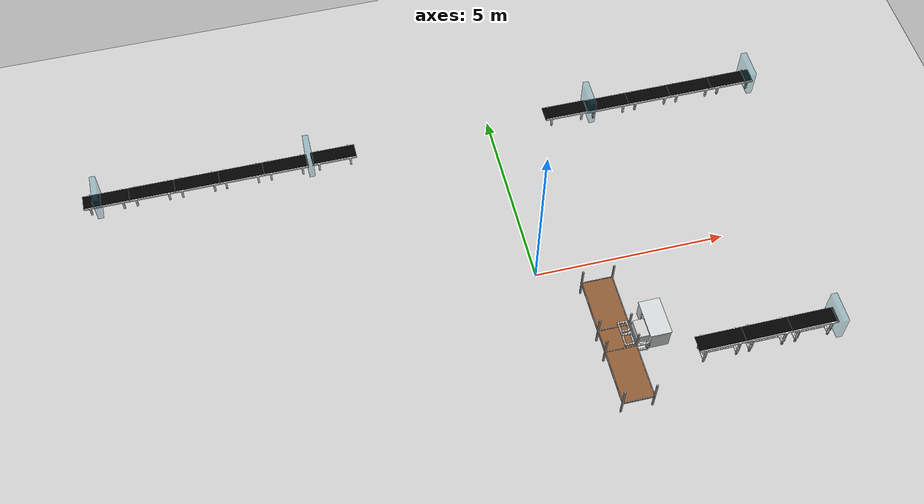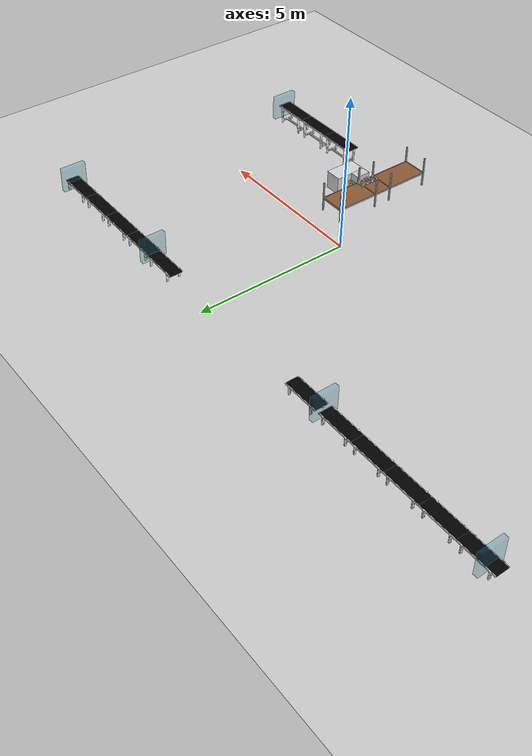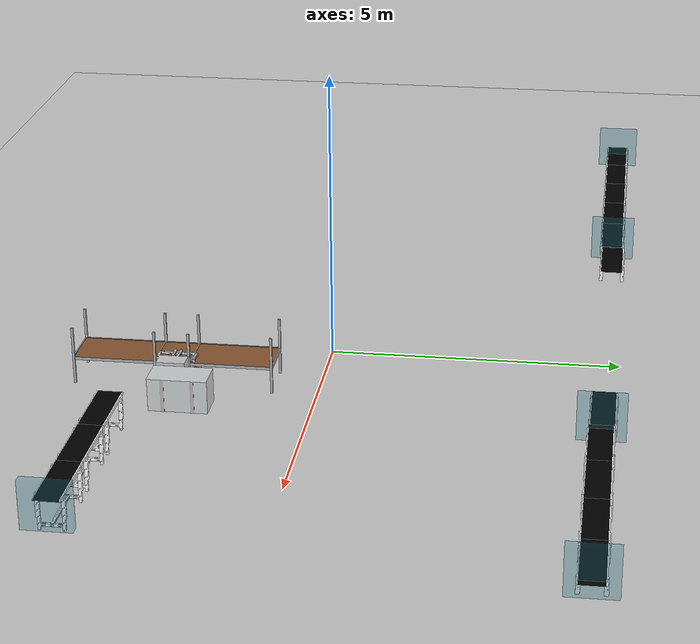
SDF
<sdf version="1.6">
 <world name="default">
  <light name="light0" type="directional">
   <pose>0 -18.818 8 0.75 -0 0</pose>
   <diffuse>0.5 0.5 0.5 1</diffuse>
   <specular>0.1 0.1 0.1 1</specular>
   <direction>0.1 0.1 -0.9</direction>
   <attenuation>
    <range>20</range>
    <constant>0.5</constant>
    <linear>0.01</linear>
    <quadratic>0.001</quadratic>
   </attenuation>
   <cast_shadows>0</cast_shadows>
  </light>
  <light name="light3" type="directional">
   <pose>3.9239 1.64974 4 0 1.2 0</pose>
   <diffuse>0.5 0.5 0.5 1</diffuse>
   <specular>0.1 0.1 0.1 1</specular>
   <direction>0.1 0.1 -0.9</direction>
   <attenuation>
    <range>20</range>
    <constant>0.5</constant>
    <linear>0.01</linear>
    <quadratic>0.001</quadratic>
   </attenuation>
   <cast_shadows>0</cast_shadows>
  </light>
  <light name="light5" type="directional">
   <pose>0.454419 12.4783 5 -0.8 0 0</pose>
   <diffuse>0.5 0.5 0.5 1</diffuse>
   <specular>0.1 0.1 0.1 1</specular>
   <direction>0.1 0.1 -0.9</direction>
   <attenuation>
    <range>20</range>
    <constant>0.5</constant>
    <linear>0.01</linear>
    <quadratic>0.001</quadratic>
   </attenuation>
   <cast_shadows>0</cast_shadows>
  </light>
  <scene>
   <shadows>false</shadows>
   <ambient>0.5 0.5 0.5 1.0</ambient>
   <grid>false</grid>
   <sky><time>22</time><sunrise>20</sunrise><sunset>21</sunset><clouds><humidity>0</humidity></clouds></sky>
  </scene>
  <include><uri>model://ground_plane</uri><pose>-1 -2 0 0 0 0</pose></include>
  <include><uri>model://rack</uri><name>rack2</name><pose>1.35 -1.755 0.0 0 0 1.57</pose></include>
  <include><uri>model://rack</uri><name>rack3</name><pose>1.35 -3.155 0.0 0 0 -1.57</pose></include>
  <include><uri>model://arm_base</uri><name>arm_base</name><pose>1.78 -2.4 0.253 0 -0 0.0</pose></include>
  <include><uri>model://drop_table</uri><name>drop_table_2</name><pose>2.4 -2.17 0 0 -0 0.0</pose></include>
  <include>
   <uri>model://conveyor_belt</uri>
   <name>Conveyor Belt 1</name>
   <pose>-4.320810 4.77 -0.48 0 -0 1.57</pose>
  </include>
  <include><uri>model://window</uri><name>window 1</name><pose>-4.98 4.750 -0.465 0 -0 1.57</pose></include>
  <include>
   <uri>model://conveyor_belt</uri>
   <name>Conveyor Belt 2</name>
   <pose>2.143537 4.770056 -0.48 0 -0 1.57</pose>
  </include>
  <include><uri>model://window</uri><name>window 2</name><pose>2.80 4.750 -0.465 0 -0 1.57</pose></include>
  <include>
   <uri>model://conveyor_belt</uri>
   <name>Conveyor Belt 5</name>
   <pose>-5.63 4.75 -0.48 0 -0 1.57</pose>
  </include>
  <include>
   <uri>model://conveyor_belt</uri>
   <name>Conveyor Belt 6</name>
   <pose>-6.83 4.75 -0.48 0 -0 1.57</pose>
  </include>
  <include>
   <uri>model://conveyor_belt</uri>
   <name>Conveyor Belt 7</name>
   <pose>-8.00 4.75 -0.48 0 -0 1.57</pose>
  </include>
  <include>
   <uri>model://conveyor_belt</uri>
   <name>Conveyor Belt 8</name>
   <pose>-9.20 4.75 -0.48 0 -0 1.57</pose>
  </include>
  <include>
   <uri>model://conveyor_belt</uri>
   <name>Conveyor Belt 9</name>
   <pose>-10.40 4.75 -0.48 0 -0 1.57</pose>
  </include>
  <include><uri>model://window</uri><name>window 5</name><pose>-10.61 4.750 -0.50 0 -0 1.57</pose></include>
  <include>
   <uri>model://conveyor_belt</uri>
   <name>Conveyor Belt 10</name>
   <pose>3.33 4.75 -0.48 0 -0 1.57</pose>
  </include>
  <include>
   <uri>model://conveyor_belt</uri>
   <name>Conveyor Belt 11</name>
   <pose>4.53 4.75 -0.48 0 -0 1.57</pose>
  </include>
  <include>
   <uri>model://conveyor_belt</uri>
   <name>Conveyor Belt 12</name>
   <pose>5.73 4.75 -0.48 0 -0 1.57</pose>
  </include>
  <include>
   <uri>model://conveyor_belt</uri>
   <name>Conveyor Belt 13</name>
   <pose>6.93 4.75 -0.48 0 -0 1.57</pose>
  </include>
  <include><uri>model://window</uri><name>window 6</name><pose>7.39 4.750 -0.52 0 -0 1.57</pose></include>
  <include>
   <uri>model://conveyor_belt</uri>
   <name>Conveyor Belt 14</name>
   <pose>3.76 -3.13 -0.16 0 -0 1.57</pose>
  </include>
  <include>
   <uri>model://conveyor_belt</uri>
   <name>Conveyor Belt 15</name>
   <pose>4.95 -3.13 -0.16 0 -0 1.57</pose>
  </include>
  <include>
   <uri>model://conveyor_belt</uri>
   <name>Conveyor Belt 16</name>
   <pose>6.15 -3.13 -0.16 0 -0 1.57</pose>
  </include>
  <include><uri>model://window</uri><name>window 7</name><pose>6.78 -3.13 -0.39 0 -0 1.57</pose></include>
  <plugin name="gazebo_link_attacher" filename="libgazebo_link_attacher.so"/>
  <plugin name="gazebo_link_ur5_attacher" filename="libgazebo_link_ur5_attacher.so"/>
  <plugin name="gazebo_ros_state" filename="libgazebo_ros_state.so">
   <ros><namespace>/_makeit</namespace></ros>
   <update_rate>1.0</update_rate>
  </plugin>
 </world>
</sdf>

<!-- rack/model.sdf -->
<sdf version='1.6'>
  <model name='rack'>
    <link name="surface">
      <inertial>
          <mass>0.1</mass>
          <inertia>
              <ixx>0.00001</ixx>
              <ixy>0.000</ixy>
              <ixz>0.000</ixz>
              <iyy>0.00001</iyy>
              <iyz>0.000</iyz>
              <izz>0.00001</izz>
          </inertia>
      </inertial>
      <visual name='surface_visual'>
        <pose relative_to=''>0 0 0.45 0 0 0</pose>
        <geometry>
          <box>
            <size>2 0.8 0.03</size>
          </box>
        </geometry>
        <material>
          <ambient>0.55 0.35 0.2 1</ambient>
          <diffuse>0.55 0.35 0.2 1</diffuse>
          <specular>0.1 0.1 0.1 1</specular>
          <emissive>0 0 0 1</emissive>
        </material>
        <transparency>0</transparency>
        <cast_shadows>1</cast_shadows>
      </visual>
      <collision name='surface_collision'>
        <pose relative_to=''>0 0 0.45 0 0 0</pose>
        <laser_retro>0</laser_retro>
        <max_contacts>10</max_contacts>
        <geometry>
          <box>
            <size>2 0.82 0.03</size>
          </box>
        </geometry>
        <surface>
          <friction>
            <ode>
              <mu>1000000</mu>
              <mu2>1000000</mu2>
            </ode>
          </friction>
          <bounce>
            <restitution_coefficient>0</restitution_coefficient>
          </bounce>
          <contact>
            <ode>
              <kp>1e13</kp>
              <kd>1</kd>
            </ode>
          </contact>
        </surface>
      </collision>

      <visual name='left_holding_visual'>
        <pose relative_to=''>0 0.4 0.45 0 0 0</pose>
        <geometry>
          <box>
            <size>1.98 0.02 0.05</size>
          </box>
        </geometry>
        <material>
          <ambient>0.3 0.3 0.3 1</ambient>
          <diffuse>0.7 0.7 0.7 1</diffuse>
          <specular>0.01 0.01 0.01 1</specular>
          <emissive>0 0 0 1</emissive>
          <pbr>
            <metal>
              <roughness>0.8</roughness>
              <metalness>0.1</metalness>
            </metal>
          </pbr>
        </material>
        <transparency>0</transparency>
        <cast_shadows>1</cast_shadows>
      </visual>

      <visual name='right_holding_visual'>
        <pose relative_to=''>0 -0.4 0.45 0 0 0</pose>
        <geometry>
          <box>
            <size>1.98 0.02 0.05</size>
          </box>
        </geometry>
        <material>
          <ambient>0.3 0.3 0.3 1</ambient>
          <diffuse>0.7 0.7 0.7 1</diffuse>
          <specular>0.01 0.01 0.01 1</specular>
          <emissive>0 0 0 1</emissive>
          <pbr>
            <metal>
              <roughness>0.8</roughness>
              <metalness>0.1</metalness>
            </metal>
          </pbr>
        </material>
        <transparency>0</transparency>
        <cast_shadows>1</cast_shadows>
      </visual>

      <visual name='front_holding_visual'>
        <pose relative_to=''>1.0 0 0.45 0 0 1.57</pose>
        <geometry>
          <box>
            <size>0.8 0.02 0.05</size>
          </box>
        </geometry>
        <material>
          <ambient>0.3 0.3 0.3 1</ambient>
          <diffuse>0.7 0.7 0.7 1</diffuse>
          <specular>0.01 0.01 0.01 1</specular>
          <emissive>0 0 0 1</emissive>
          <pbr>
            <metal>
              <roughness>0.8</roughness>
              <metalness>0.1</metalness>
            </metal>
          </pbr>
        </material>
        <transparency>0</transparency>
        <cast_shadows>1</cast_shadows>
      </visual>

      <visual name='back_holding_visual'>
        <pose relative_to=''>-1.0 0 0.45 0 0 1.57</pose>
        <geometry>
          <box>
            <size>0.8 0.02 0.05</size>
          </box>
        </geometry>
        <material>
          <ambient>0.3 0.3 0.3 1</ambient>
          <diffuse>0.7 0.7 0.7 1</diffuse>
          <specular>0.01 0.01 0.01 1</specular>
          <emissive>0 0 0 1</emissive>
          <pbr>
            <metal>
              <roughness>0.8</roughness>
              <metalness>0.1</metalness>
            </metal>
          </pbr>
        </material>
        <transparency>0</transparency>
        <cast_shadows>1</cast_shadows>
      </visual>

      <visual name='front_left_leg_visual'>
        <pose relative_to=''>0.99 0.4 0.5 0 0 0</pose>
        <geometry>
          <box>
            <size>0.04 0.04 1.0</size>
          </box>
        </geometry>
        <material>
          <ambient>0.3 0.3 0.3 1</ambient>
          <diffuse>0.7 0.7 0.7 1</diffuse>
          <specular>0.01 0.01 0.01 1</specular>
          <emissive>0 0 0 1</emissive>
          <pbr>
            <metal>
              <roughness>0.8</roughness>
              <metalness>0.1</metalness>
            </metal>
          </pbr>
        </material>
        <cast_shadows>1</cast_shadows>
      </visual>
      <collision name='front_left_leg_collision'>
        <pose relative_to=''>0.99 0.4 0.5 0 0 0</pose>
        <laser_retro>0</laser_retro>
        <max_contacts>10</max_contacts>
        <geometry>
          <box>
            <size>0.04 0.04 1.0</size>
          </box>
        </geometry>
        <surface>
          <friction>
            <ode>
              <mu>0.1</mu>
              <mu2>0.1</mu2>
            </ode>
          </friction>
          <bounce>
            <restitution_coefficient>0</restitution_coefficient>
          </bounce>
          <contact>
            <ode>
              <kp>1e6</kp>
              <kd>1</kd>
            </ode>
          </contact>
        </surface>
      </collision>

      <visual name='front_right_leg_visual'>
        <pose relative_to=''>0.99 -0.4 0.5 0 0 0</pose>
        <geometry>
          <box>
            <size>0.04 0.04 1.0</size>
          </box>
        </geometry>
        <material>
          <ambient>0.3 0.3 0.3 1</ambient>
          <diffuse>0.7 0.7 0.7 1</diffuse>
          <specular>0.01 0.01 0.01 1</specular>
          <emissive>0 0 0 1</emissive>
          <pbr>
            <metal>
              <roughness>0.8</roughness>
              <metalness>0.1</metalness>
            </metal>
          </pbr>
        </material>
        <cast_shadows>1</cast_shadows>
      </visual>
      <collision name='front_right_leg_collision'>
        <pose relative_to=''>0.99 -0.4 0.5 0 0 0</pose>
        <laser_retro>0</laser_retro>
        <max_contacts>10</max_contacts>
        <geometry>
          <box>
            <size>0.04 0.04 1.0</size>
          </box>
        </geometry>
        <surface>
          <friction>
            <ode>
              <mu>0.1</mu>
              <mu2>0.1</mu2>
            </ode>
          </friction>
          <bounce>
            <restitution_coefficient>0</restitution_coefficient>
          </bounce>
          <contact>
            <ode>
              <kp>1e6</kp>
              <kd>1</kd>
            </ode>
          </contact>
        </surface>
      </collision>

      <visual name='back_left_leg_visual'>
        <pose relative_to=''>-0.99 0.4 0.5 0 0 0</pose>
        <geometry>
          <box>
            <size>0.04 0.04 1.0</size>
          </box>
        </geometry>
        <material>
          <ambient>0.3 0.3 0.3 1</ambient>
          <diffuse>0.7 0.7 0.7 1</diffuse>
          <specular>0.01 0.01 0.01 1</specular>
          <emissive>0 0 0 1</emissive>
          <pbr>
            <metal>
              <roughness>0.8</roughness>
              <metalness>0.1</metalness>
            </metal>
          </pbr>
        </material>
        <cast_shadows>1</cast_shadows>
      </visual>
      <collision name='back_left_leg_collision'>
        <pose relative_to=''>-0.99 0.4 0.5 0 0 0</pose>
        <laser_retro>0</laser_retro>
        <max_contacts>10</max_contacts>
        <geometry>
          <box>
            <size>0.04 0.04 1.0</size>
          </box>
        </geometry>
        <surface>
          <friction>
            <ode>
              <mu>0.1</mu>
              <mu2>0.1</mu2>
            </ode>
          </friction>
          <bounce>
            <restitution_coefficient>0</restitution_coefficient>
          </bounce>
          <contact>
            <ode>
              <kp>1e6</kp>
              <kd>1</kd>
            </ode>
          </contact>
        </surface>
      </collision>

      <visual name='back_right_leg_visual'>
        <pose relative_to=''>-0.99 -0.4 0.5 0 0 0</pose>
        <geometry>
          <box>
            <size>0.04 0.04 1.0</size>
          </box>
        </geometry>
        <material>
          <ambient>0.3 0.3 0.3 1</ambient>
          <diffuse>0.7 0.7 0.7 1</diffuse>
          <specular>0.01 0.01 0.01 1</specular>
          <emissive>0 0 0 1</emissive>
          <pbr>
            <metal>
              <roughness>0.8</roughness>
              <metalness>0.1</metalness>
            </metal>
          </pbr>
        </material>
        <cast_shadows>1</cast_shadows>
      </visual>
      <collision name='back_right_leg_collision'>
        <pose relative_to=''>-0.99 -0.4 0.5 0 0 0</pose>
        <laser_retro>0</laser_retro>
        <max_contacts>10</max_contacts>
        <geometry>
          <box>
            <size>0.04 0.04 1.0</size>
          </box>
        </geometry>
        <surface>
          <friction>
            <ode>
              <mu>0.1</mu>
              <mu2>0.1</mu2>
            </ode>
          </friction>
          <bounce>
            <restitution_coefficient>0</restitution_coefficient>
          </bounce>
          <contact>
            <ode>
              <kp>1e6</kp>
              <kd>1</kd>
            </ode>
          </contact>
        </surface>
      </collision>
    </link>

  </model>
</sdf>

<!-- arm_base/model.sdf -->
<sdf version='1.7'>
  <model name='arm_base'>
    <link name='link'>
      <inertial>
        <mass>1</mass>
        <inertia>
          <ixx>0.166667</ixx>
          <ixy>0</ixy>
          <ixz>0</ixz>
          <iyy>0.166667</iyy>
          <iyz>0</iyz>
          <izz>0.166667</izz>
        </inertia>
        <pose>0 0 0 0 -0 0</pose>
      </inertial>
      <self_collide>0</self_collide>
      <enable_wind>0</enable_wind>
      <kinematic>0</kinematic>
      <pose>0 0 0 0 -0 0</pose>
      <gravity>1</gravity>
      <visual name='visual1'>
        <cast_shadows>0</cast_shadows>
        <geometry>
          <mesh>
            <uri>model://arm_base/meshes/arm_base.dae</uri>
          </mesh>
        </geometry>
        <material>
          <shader type='pixel'>
            <normal_map>__default__</normal_map>
          </shader>
          <emissive>0 0 0 1</emissive>

        </material>
        <pose>0 0 -0.25 0 -0 0</pose>
        <transparency>0</transparency>
        <pose>0 0 0 0 -0 0</pose>
        <transparency>0</transparency>
      </visual>
      <collision name='collision'>
        <laser_retro>0</laser_retro>
        <max_contacts>10</max_contacts>
        <pose>0 0 0 0 -0 0</pose>
        <geometry>
          <box>
            <size>0.7 0.7 0.52</size>
          </box>
        </geometry>
        <surface>
          <friction>
            <ode>
              <mu>1</mu>
              <mu2>1</mu2>
              <fdir1>0 0 0</fdir1>
              <slip1>0</slip1>
              <slip2>0</slip2>
            </ode>
            <torsional>
              <coefficient>1</coefficient>
              <patch_radius>0</patch_radius>
              <surface_radius>0</surface_radius>
              <use_patch_radius>1</use_patch_radius>
              <ode>
                <slip>0</slip>
              </ode>
            </torsional>
          </friction>
          <bounce>
            <restitution_coefficient>0</restitution_coefficient>
            <threshold>1e+06</threshold>
          </bounce>
          <contact>
            <collide_without_contact>0</collide_without_contact>
            <collide_without_contact_bitmask>1</collide_without_contact_bitmask>
            <collide_bitmask>1</collide_bitmask>
            <ode>
              <soft_cfm>0</soft_cfm>
              <soft_erp>0.2</soft_erp>
              <kp>1e+13</kp>
              <kd>1</kd>
              <max_vel>0.01</max_vel>
              <min_depth>0</min_depth>
            </ode>
            <bullet>
              <split_impulse>1</split_impulse>
              <split_impulse_penetration_threshold>-0.01</split_impulse_penetration_threshold>
              <soft_cfm>0</soft_cfm>
              <soft_erp>0.2</soft_erp>
              <kp>1e+13</kp>
              <kd>1</kd>
            </bullet>
          </contact>
        </surface>
      </collision>
    </link>
    <static>1</static>
    <allow_auto_disable>1</allow_auto_disable>
  </model>
</sdf>

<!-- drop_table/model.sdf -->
<sdf version='1.7'>
  <model name='drop_table'>
    <link name='link'>
      <inertial>
        <mass>1</mass>
        <inertia>
          <ixx>0.166667</ixx>
          <ixy>0</ixy>
          <ixz>0</ixz>
          <iyy>0.166667</iyy>
          <iyz>0</iyz>
          <izz>0.166667</izz>
        </inertia>
        <pose>0 0 0 0 -0 0</pose>
      </inertial>
      <self_collide>0</self_collide>
      <enable_wind>0</enable_wind>
      <kinematic>0</kinematic>
      <pose>0 0 0 0 -0 0</pose>
      <gravity>1</gravity>
      <visual name='visual1'>
        <cast_shadows>0</cast_shadows>
        <geometry>
          <mesh>
            <uri>model://drop_table/meshes/table.dae</uri>
          </mesh>
        </geometry>
        <material>
          <shader type='pixel'>
            <normal_map>__default__</normal_map>
          </shader>
          <emissive>0 0 0 1</emissive>

        </material>
        <pose>0 0 0 0 -0 0</pose>
        <transparency>0</transparency>
        <pose>0 0 0 0 -0 0</pose>
        <transparency>0</transparency>
      </visual>
      <collision name='collision'>
        <laser_retro>0</laser_retro>
        <max_contacts>10</max_contacts>
        <pose>0 0 0.29 0 -0 0</pose>
        <geometry>
          <box>
            <size>0.5 1 0.58</size>
          </box>
        </geometry>
        <surface>
          <friction>
            <ode>
              <mu>1</mu>
              <mu2>1</mu2>
              <fdir1>0 0 0</fdir1>
              <slip1>0</slip1>
              <slip2>0</slip2>
            </ode>
            <torsional>
              <coefficient>1</coefficient>
              <patch_radius>0</patch_radius>
              <surface_radius>0</surface_radius>
              <use_patch_radius>1</use_patch_radius>
              <ode>
                <slip>0</slip>
              </ode>
            </torsional>
          </friction>
          <bounce>
            <restitution_coefficient>0</restitution_coefficient>
            <threshold>1e+06</threshold>
          </bounce>
          <contact>
            <collide_without_contact>0</collide_without_contact>
            <collide_without_contact_bitmask>1</collide_without_contact_bitmask>
            <collide_bitmask>1</collide_bitmask>
            <ode>
              <soft_cfm>0</soft_cfm>
              <soft_erp>0.2</soft_erp>
              <kp>1e+13</kp>
              <kd>1</kd>
              <max_vel>0.01</max_vel>
              <min_depth>0</min_depth>
            </ode>
            <bullet>
              <split_impulse>1</split_impulse>
              <split_impulse_penetration_threshold>-0.01</split_impulse_penetration_threshold>
              <soft_cfm>0</soft_cfm>
              <soft_erp>0.2</soft_erp>
              <kp>1e+13</kp>
              <kd>1</kd>
            </bullet>
          </contact>
        </surface>
      </collision>
    </link>
    <static>1</static>
    <allow_auto_disable>1</allow_auto_disable>
  </model>
</sdf>

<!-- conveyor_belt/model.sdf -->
<sdf version="1.9">

  <model name="conveyor_belt">

    <static>true</static>

    <link name="link">

      <pose>0 0 0 0 0 0</pose>

      <visual name="visual">

        <pose>0 0 0 0 0 0</pose>

        <geometry>
          <mesh>
            <uri>meshes/conveyor_belt.dae</uri>
          </mesh>
        </geometry>

      </visual>

      <collision name="collision">

        <pose>0 0 0.71 0 0 0</pose>

        <geometry>
          <box>
            <size>0.50 1.20 0.055</size>
          </box>
        </geometry>

        <surface>

          <contact>
            <ode>
              <kp>100000</kp>
              <kd>10</kd>
              <min_depth>0.001</min_depth>
              <max_vel>1.0</max_vel>
            </ode>
          </contact>

          <friction>
            <ode>

              <!--
                La cinta se mueve en el eje Y local.
              -->

              <fdir1>1 0 0</fdir1>

              <mu>2.0</mu>

              <mu2>0.5</mu2>

            </ode>
          </friction>

        </surface>

      </collision>

    </link>

    <!-- TRACK CONTROLLER                                       -->

    <plugin
      filename="gz-sim-track-controller-system"
      name="gz::sim::systems::TrackController">

      <link>link</link>

      <track_orientation>0 0 1.57079632679</track_orientation>

      <min_velocity>-1.0</min_velocity>

      <max_velocity>1.0</max_velocity>

    </plugin>

  </model>

</sdf>

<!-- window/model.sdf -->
<sdf version='1.6'>
  <model name='window'>
    <link name='link_2'>
         <visual name='visual'>
        <pose frame=''>0 0 0.9 0 -0 0</pose>
        <geometry>
          <box>
            <size>0.8 0.15 0.8</size>
          </box>
        </geometry>
         <material>
          <lighting>1</lighting>
             <ambient>0.1 0.5 0.6 1</ambient>
          <diffuse>0.1 0.5 0.6 1</diffuse>
          <specular>0.01 0.01 0.01 1</specular>
          <emissive>0 0 0 1</emissive>
        </material>
        <cast_shadows>1</cast_shadows>
        <transparency>0.7</transparency>
      </visual>
      <collision name='collision'>
        <laser_retro>0</laser_retro>
        <max_contacts>10</max_contacts>
        <pose frame=''>0 0 0.9 0 -0 0</pose>
        <geometry>
          <box>
            <size>0.8 0.15 0.8</size>
          </box>
        </geometry>

      </collision>
    </link>
    <static>1</static>
    <allow_auto_disable>1</allow_auto_disable>
  </model>
</sdf>
